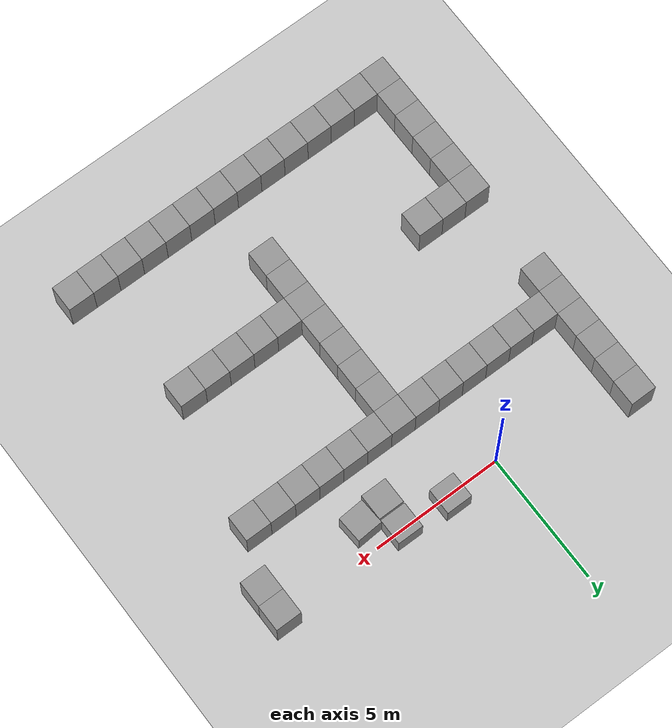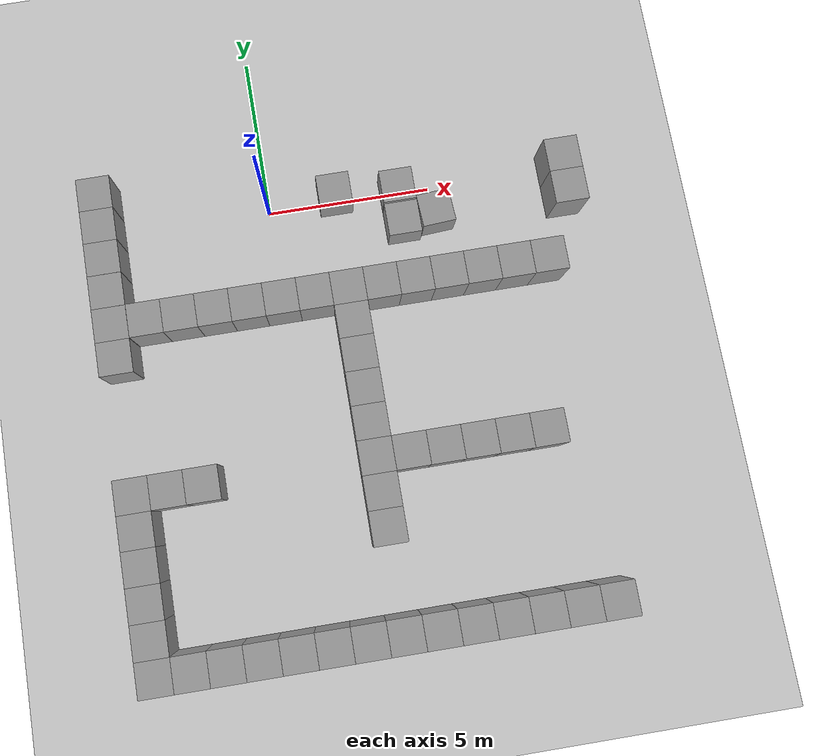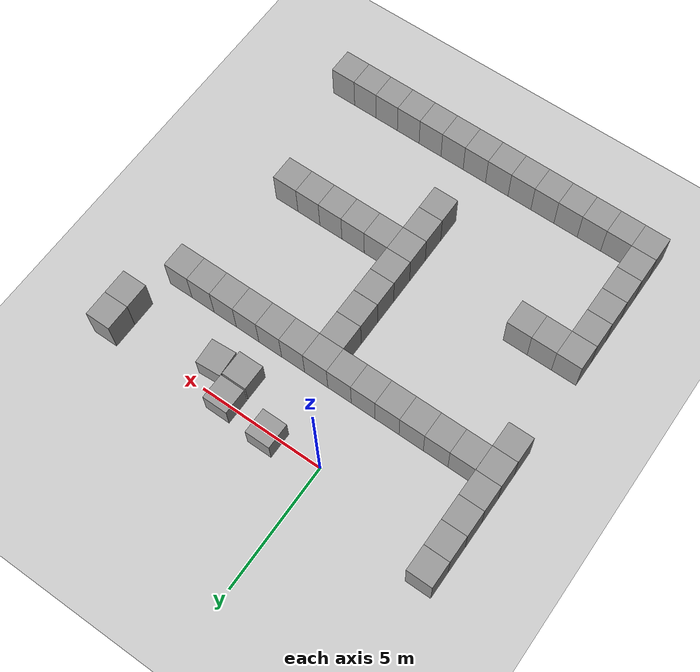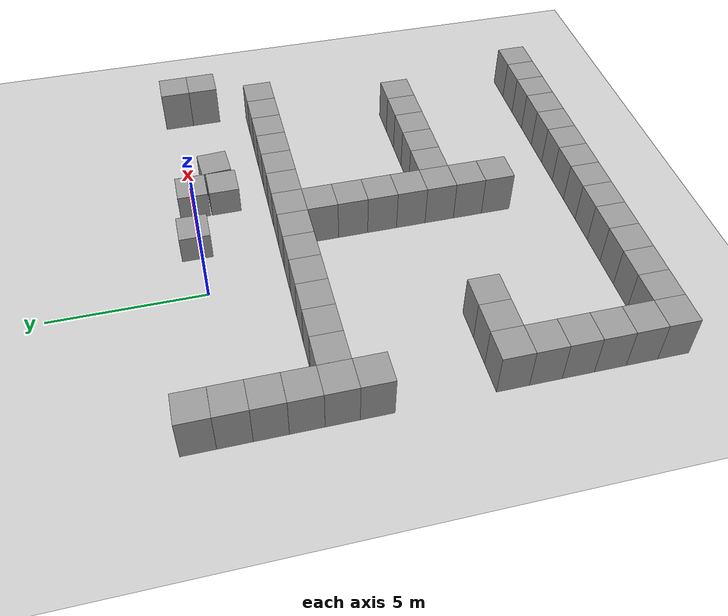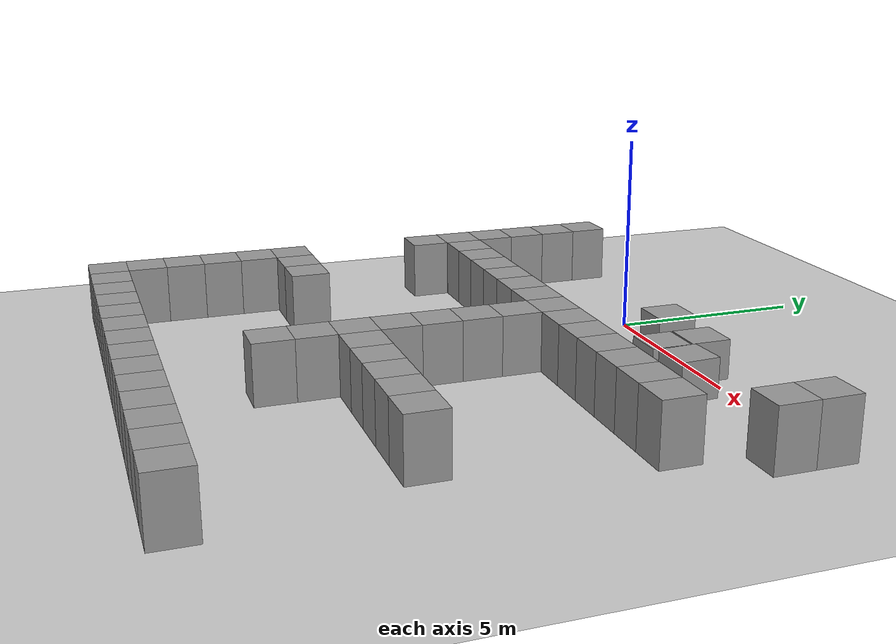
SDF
<sdf version="1.4">
 <world name="default">
  <model name="ground_plane">
   <static>1</static>
   <link name="link">
    <collision name="collision">
     <geometry><plane><normal>0 0 1</normal><size>100 100</size></plane></geometry>
     <surface><friction><ode><mu>100</mu><mu2>50</mu2></ode></friction></surface>
    </collision>
    <visual name="visual">
     <cast_shadows>0</cast_shadows>
     <geometry><plane><normal>0 0 1</normal><size>100 100</size></plane></geometry>
     <material>
      <script><uri>file://media/materials/scripts/gazebo.material</uri><name>Gazebo/Grey</name></script>
     </material>
    </visual>
    <velocity_decay><linear>0</linear><angular>0</angular></velocity_decay>
   </link>
  </model>
  <model name="unit_box_15">
   <pose>-0.999934 -2.99993 0.5 0 0 -3.9e-05</pose>
   <static>1</static>
   <link name="link">
    <inertial>
     <mass>1</mass>
     <inertia><ixx>1</ixx><ixy>0</ixy><ixz>0</ixz><iyy>1</iyy><iyz>0</iyz><izz>1</izz></inertia>
    </inertial>
    <collision name="collision"><geometry><box><size>1 1 2</size></box></geometry></collision>
    <visual name="visual">
     <geometry><box><size>1 1 2</size></box></geometry>
     <material>
      <script><uri>file://media/materials/scripts/gazebo.material</uri><name>Gazebo/Grey</name></script>
     </material>
    </visual>
    <velocity_decay><linear>0</linear><angular>0</angular></velocity_decay>
   </link>
   <static>0</static>
  </model>
  <model name="unit_box_16">
   <pose>6.7e-05 -2.99994 0.5 0 0 -3.6e-05</pose>
   <static>1</static>
   <link name="link">
    <inertial>
     <mass>1</mass>
     <inertia><ixx>1</ixx><ixy>0</ixy><ixz>0</ixz><iyy>1</iyy><iyz>0</iyz><izz>1</izz></inertia>
    </inertial>
    <collision name="collision"><geometry><box><size>1 1 2</size></box></geometry></collision>
    <visual name="visual">
     <geometry><box><size>1 1 2</size></box></geometry>
     <material>
      <script><uri>file://media/materials/scripts/gazebo.material</uri><name>Gazebo/Grey</name></script>
     </material>
    </visual>
    <velocity_decay><linear>0</linear><angular>0</angular></velocity_decay>
   </link>
   <static>0</static>
  </model>
  <model name="unit_box_17">
   <pose>1.00008 -2.99994 0.5 0 0 -1.9e-05</pose>
   <static>1</static>
   <link name="link">
    <inertial>
     <mass>1</mass>
     <inertia><ixx>1</ixx><ixy>0</ixy><ixz>0</ixz><iyy>1</iyy><iyz>0</iyz><izz>1</izz></inertia>
    </inertial>
    <collision name="collision"><geometry><box><size>1 1 2</size></box></geometry></collision>
    <visual name="visual">
     <geometry><box><size>1 1 2</size></box></geometry>
     <material>
      <script><uri>file://media/materials/scripts/gazebo.material</uri><name>Gazebo/Grey</name></script>
     </material>
    </visual>
    <velocity_decay><linear>0</linear><angular>0</angular></velocity_decay>
   </link>
   <static>0</static>
  </model>
  <model name="unit_box_18">
   <pose>2.00008 -2.99995 0.5 0 0 -1.5e-05</pose>
   <static>1</static>
   <link name="link">
    <inertial>
     <mass>1</mass>
     <inertia><ixx>1</ixx><ixy>0</ixy><ixz>0</ixz><iyy>1</iyy><iyz>0</iyz><izz>1</izz></inertia>
    </inertial>
    <collision name="collision"><geometry><box><size>1 1 2</size></box></geometry></collision>
    <visual name="visual">
     <geometry><box><size>1 1 2</size></box></geometry>
     <material>
      <script><uri>file://media/materials/scripts/gazebo.material</uri><name>Gazebo/Grey</name></script>
     </material>
    </visual>
    <velocity_decay><linear>0</linear><angular>0</angular></velocity_decay>
   </link>
   <static>0</static>
  </model>
  <model name="unit_box_19">
   <pose>3.00008 -2.9999 0.5 0 0 -1e-05</pose>
   <static>1</static>
   <link name="link">
    <inertial>
     <mass>1</mass>
     <inertia><ixx>1</ixx><ixy>0</ixy><ixz>0</ixz><iyy>1</iyy><iyz>0</iyz><izz>1</izz></inertia>
    </inertial>
    <collision name="collision"><geometry><box><size>1 1 2</size></box></geometry></collision>
    <visual name="visual">
     <geometry><box><size>1 1 2</size></box></geometry>
     <material>
      <script><uri>file://media/materials/scripts/gazebo.material</uri><name>Gazebo/Grey</name></script>
     </material>
    </visual>
    <velocity_decay><linear>0</linear><angular>0</angular></velocity_decay>
   </link>
   <static>0</static>
  </model>
  <model name="unit_box_20">
   <pose>4.00008 -2.99993 0.5 0 0 -1e-05</pose>
   <static>1</static>
   <link name="link">
    <inertial>
     <mass>1</mass>
     <inertia><ixx>1</ixx><ixy>0</ixy><ixz>0</ixz><iyy>1</iyy><iyz>0</iyz><izz>1</izz></inertia>
    </inertial>
    <collision name="collision"><geometry><box><size>1 1 2</size></box></geometry></collision>
    <visual name="visual">
     <geometry><box><size>1 1 2</size></box></geometry>
     <material>
      <script><uri>file://media/materials/scripts/gazebo.material</uri><name>Gazebo/Grey</name></script>
     </material>
    </visual>
    <velocity_decay><linear>0</linear><angular>0</angular></velocity_decay>
   </link>
   <static>0</static>
  </model>
  <model name="unit_box_21">
   <pose>5.00008 -2.99993 0.5 0 0 -1.2e-05</pose>
   <static>1</static>
   <link name="link">
    <inertial>
     <mass>1</mass>
     <inertia><ixx>1</ixx><ixy>0</ixy><ixz>0</ixz><iyy>1</iyy><iyz>0</iyz><izz>1</izz></inertia>
    </inertial>
    <collision name="collision"><geometry><box><size>1 1 2</size></box></geometry></collision>
    <visual name="visual">
     <geometry><box><size>1 1 2</size></box></geometry>
     <material>
      <script><uri>file://media/materials/scripts/gazebo.material</uri><name>Gazebo/Grey</name></script>
     </material>
    </visual>
    <velocity_decay><linear>0</linear><angular>0</angular></velocity_decay>
   </link>
   <static>0</static>
  </model>
  <model name="unit_box_22">
   <pose>6.00009 -2.99997 0.5 0 0 -1.2e-05</pose>
   <static>1</static>
   <link name="link">
    <inertial>
     <mass>1</mass>
     <inertia><ixx>1</ixx><ixy>0</ixy><ixz>0</ixz><iyy>1</iyy><iyz>0</iyz><izz>1</izz></inertia>
    </inertial>
    <collision name="collision"><geometry><box><size>1 1 2</size></box></geometry></collision>
    <visual name="visual">
     <geometry><box><size>1 1 2</size></box></geometry>
     <material>
      <script><uri>file://media/materials/scripts/gazebo.material</uri><name>Gazebo/Grey</name></script>
     </material>
    </visual>
    <velocity_decay><linear>0</linear><angular>0</angular></velocity_decay>
   </link>
   <static>0</static>
  </model>
  <model name="unit_box_23">
   <pose>7.00009 -2.99996 0.5 0 0 -1e-05</pose>
   <static>1</static>
   <link name="link">
    <inertial>
     <mass>1</mass>
     <inertia><ixx>1</ixx><ixy>0</ixy><ixz>0</ixz><iyy>1</iyy><iyz>0</iyz><izz>1</izz></inertia>
    </inertial>
    <collision name="collision"><geometry><box><size>1 1 2</size></box></geometry></collision>
    <visual name="visual">
     <geometry><box><size>1 1 2</size></box></geometry>
     <material>
      <script><uri>file://media/materials/scripts/gazebo.material</uri><name>Gazebo/Grey</name></script>
     </material>
    </visual>
    <velocity_decay><linear>0</linear><angular>0</angular></velocity_decay>
   </link>
   <static>0</static>
  </model>
  <model name="unit_box_24">
   <pose>8.00009 -3 0.5 0 0 -1.4e-05</pose>
   <static>1</static>
   <link name="link">
    <inertial>
     <mass>1</mass>
     <inertia><ixx>1</ixx><ixy>0</ixy><ixz>0</ixz><iyy>1</iyy><iyz>0</iyz><izz>1</izz></inertia>
    </inertial>
    <collision name="collision"><geometry><box><size>1 1 2</size></box></geometry></collision>
    <visual name="visual">
     <geometry><box><size>1 1 2</size></box></geometry>
     <material>
      <script><uri>file://media/materials/scripts/gazebo.material</uri><name>Gazebo/Grey</name></script>
     </material>
    </visual>
    <velocity_decay><linear>0</linear><angular>0</angular></velocity_decay>
   </link>
   <static>0</static>
  </model>
  <model name="unit_box_27">
   <pose>8.99997 -1.00001 0.5 0 0 -1e-05</pose>
   <static>1</static>
   <link name="link">
    <inertial>
     <mass>1</mass>
     <inertia><ixx>1</ixx><ixy>0</ixy><ixz>0</ixz><iyy>1</iyy><iyz>0</iyz><izz>1</izz></inertia>
    </inertial>
    <collision name="collision"><geometry><box><size>1 1 2</size></box></geometry></collision>
    <visual name="visual">
     <geometry><box><size>1 1 2</size></box></geometry>
     <material>
      <script><uri>file://media/materials/scripts/gazebo.material</uri><name>Gazebo/Grey</name></script>
     </material>
    </visual>
    <velocity_decay><linear>0</linear><angular>0</angular></velocity_decay>
   </link>
   <static>0</static>
  </model>
  <model name="unit_box_28">
   <pose>8.99994 -8e-06 0.5 0 0 -1.1e-05</pose>
   <static>1</static>
   <link name="link">
    <inertial>
     <mass>1</mass>
     <inertia><ixx>1</ixx><ixy>0</ixy><ixz>0</ixz><iyy>1</iyy><iyz>0</iyz><izz>1</izz></inertia>
    </inertial>
    <collision name="collision"><geometry><box><size>1 1 2</size></box></geometry></collision>
    <visual name="visual">
     <geometry><box><size>1 1 2</size></box></geometry>
     <material>
      <script><uri>file://media/materials/scripts/gazebo.material</uri><name>Gazebo/Grey</name></script>
     </material>
    </visual>
    <velocity_decay><linear>0</linear><angular>0</angular></velocity_decay>
   </link>
   <static>0</static>
  </model>
  <model name="unit_box_43">
   <pose>-5.00197 0.99143 0.5 0 -0 0.001375</pose>
   <static>1</static>
   <link name="link">
    <inertial>
     <mass>1</mass>
     <inertia><ixx>1</ixx><ixy>0</ixy><ixz>0</ixz><iyy>1</iyy><iyz>0</iyz><izz>1</izz></inertia>
    </inertial>
    <collision name="collision"><geometry><box><size>1 1 2</size></box></geometry></collision>
    <visual name="visual">
     <geometry><box><size>1 1 2</size></box></geometry>
     <material>
      <script><uri>file://media/materials/scripts/gazebo.material</uri><name>Gazebo/Grey</name></script>
     </material>
    </visual>
    <velocity_decay><linear>0</linear><angular>0</angular></velocity_decay>
   </link>
   <static>0</static>
  </model>
  <model name="unit_box_44">
   <pose>-5.00065 -0.008792 0.5 0 -0 0.000932</pose>
   <static>1</static>
   <link name="link">
    <inertial>
     <mass>1</mass>
     <inertia><ixx>1</ixx><ixy>0</ixy><ixz>0</ixz><iyy>1</iyy><iyz>0</iyz><izz>1</izz></inertia>
    </inertial>
    <collision name="collision"><geometry><box><size>1 1 2</size></box></geometry></collision>
    <visual name="visual">
     <geometry><box><size>1 1 2</size></box></geometry>
     <material>
      <script><uri>file://media/materials/scripts/gazebo.material</uri><name>Gazebo/Grey</name></script>
     </material>
    </visual>
    <velocity_decay><linear>0</linear><angular>0</angular></velocity_decay>
   </link>
   <static>0</static>
  </model>
  <model name="unit_box_45">
   <pose>-5.00074 -1.00881 0.5 0 -0 0.000893</pose>
   <static>1</static>
   <link name="link">
    <inertial>
     <mass>1</mass>
     <inertia><ixx>1</ixx><ixy>0</ixy><ixz>0</ixz><iyy>1</iyy><iyz>0</iyz><izz>1</izz></inertia>
    </inertial>
    <collision name="collision"><geometry><box><size>1 1 2</size></box></geometry></collision>
    <visual name="visual">
     <geometry><box><size>1 1 2</size></box></geometry>
     <material>
      <script><uri>file://media/materials/scripts/gazebo.material</uri><name>Gazebo/Grey</name></script>
     </material>
    </visual>
    <velocity_decay><linear>0</linear><angular>0</angular></velocity_decay>
   </link>
   <static>0</static>
  </model>
  <model name="unit_box_46">
   <pose>-5.00037 -2.00886 0.5 0 -0 0.000802</pose>
   <static>1</static>
   <link name="link">
    <inertial>
     <mass>1</mass>
     <inertia><ixx>1</ixx><ixy>0</ixy><ixz>0</ixz><iyy>1</iyy><iyz>0</iyz><izz>1</izz></inertia>
    </inertial>
    <collision name="collision"><geometry><box><size>1 1 2</size></box></geometry></collision>
    <visual name="visual">
     <geometry><box><size>1 1 2</size></box></geometry>
     <material>
      <script><uri>file://media/materials/scripts/gazebo.material</uri><name>Gazebo/Grey</name></script>
     </material>
    </visual>
    <velocity_decay><linear>0</linear><angular>0</angular></velocity_decay>
   </link>
   <static>0</static>
  </model>
  <model name="unit_box_47">
   <pose>-5.00047 -3.0089 0.5 0 -0 0.000729</pose>
   <static>1</static>
   <link name="link">
    <inertial>
     <mass>1</mass>
     <inertia><ixx>1</ixx><ixy>0</ixy><ixz>0</ixz><iyy>1</iyy><iyz>0</iyz><izz>1</izz></inertia>
    </inertial>
    <collision name="collision"><geometry><box><size>1 1 2</size></box></geometry></collision>
    <visual name="visual">
     <geometry><box><size>1 1 2</size></box></geometry>
     <material>
      <script><uri>file://media/materials/scripts/gazebo.material</uri><name>Gazebo/Grey</name></script>
     </material>
    </visual>
    <velocity_decay><linear>0</linear><angular>0</angular></velocity_decay>
   </link>
   <static>0</static>
  </model>
  <model name="unit_box_48">
   <pose>-3.99998 -3.00036 0.5 0 0 -0.000119</pose>
   <static>1</static>
   <link name="link">
    <inertial>
     <mass>1</mass>
     <inertia><ixx>1</ixx><ixy>0</ixy><ixz>0</ixz><iyy>1</iyy><iyz>0</iyz><izz>1</izz></inertia>
    </inertial>
    <collision name="collision"><geometry><box><size>1 1 2</size></box></geometry></collision>
    <visual name="visual">
     <geometry><box><size>1 1 2</size></box></geometry>
     <material>
      <script><uri>file://media/materials/scripts/gazebo.material</uri><name>Gazebo/Grey</name></script>
     </material>
    </visual>
    <velocity_decay><linear>0</linear><angular>0</angular></velocity_decay>
   </link>
   <static>0</static>
  </model>
  <model name="unit_box_49">
   <pose>-2.99995 -3.00005 0.5 0 0 -7.3e-05</pose>
   <static>1</static>
   <link name="link">
    <inertial>
     <mass>1</mass>
     <inertia><ixx>1</ixx><ixy>0</ixy><ixz>0</ixz><iyy>1</iyy><iyz>0</iyz><izz>1</izz></inertia>
    </inertial>
    <collision name="collision"><geometry><box><size>1 1 2</size></box></geometry></collision>
    <visual name="visual">
     <geometry><box><size>1 1 2</size></box></geometry>
     <material>
      <script><uri>file://media/materials/scripts/gazebo.material</uri><name>Gazebo/Grey</name></script>
     </material>
    </visual>
    <velocity_decay><linear>0</linear><angular>0</angular></velocity_decay>
   </link>
   <static>0</static>
  </model>
  <model name="unit_box_50">
   <pose>-1.99995 -3.00002 0.5 0 0 -7.1e-05</pose>
   <static>1</static>
   <link name="link">
    <inertial>
     <mass>1</mass>
     <inertia><ixx>1</ixx><ixy>0</ixy><ixz>0</ixz><iyy>1</iyy><iyz>0</iyz><izz>1</izz></inertia>
    </inertial>
    <collision name="collision"><geometry><box><size>1 1 2</size></box></geometry></collision>
    <visual name="visual">
     <geometry><box><size>1 1 2</size></box></geometry>
     <material>
      <script><uri>file://media/materials/scripts/gazebo.material</uri><name>Gazebo/Grey</name></script>
     </material>
    </visual>
    <velocity_decay><linear>0</linear><angular>0</angular></velocity_decay>
   </link>
   <static>0</static>
  </model>
  <model name="unit_box_224">
   <pose>1.99999 -3.99999 0.5 0 0 -4e-06</pose>
   <static>1</static>
   <link name="link">
    <inertial>
     <mass>1</mass>
     <inertia><ixx>1</ixx><ixy>0</ixy><ixz>0</ixz><iyy>1</iyy><iyz>0</iyz><izz>1</izz></inertia>
    </inertial>
    <collision name="collision"><geometry><box><size>1 1 2</size></box></geometry></collision>
    <visual name="visual">
     <geometry><box><size>1 1 2</size></box></geometry>
     <material>
      <script><uri>file://media/materials/scripts/gazebo.material</uri><name>Gazebo/Grey</name></script>
     </material>
    </visual>
    <velocity_decay><linear>0</linear><angular>0</angular></velocity_decay>
   </link>
   <static>0</static>
  </model>
  <model name="unit_box_225">
   <pose>2 -4.99999 0.5 0 0 -4e-06</pose>
   <static>1</static>
   <link name="link">
    <inertial>
     <mass>1</mass>
     <inertia><ixx>1</ixx><ixy>0</ixy><ixz>0</ixz><iyy>1</iyy><iyz>0</iyz><izz>1</izz></inertia>
    </inertial>
    <collision name="collision"><geometry><box><size>1 1 2</size></box></geometry></collision>
    <visual name="visual">
     <geometry><box><size>1 1 2</size></box></geometry>
     <material>
      <script><uri>file://media/materials/scripts/gazebo.material</uri><name>Gazebo/Grey</name></script>
     </material>
    </visual>
    <velocity_decay><linear>0</linear><angular>0</angular></velocity_decay>
   </link>
   <static>0</static>
  </model>
  <model name="unit_box_226">
   <pose>2.00001 -6 0.5 0 0 -3e-06</pose>
   <static>1</static>
   <link name="link">
    <inertial>
     <mass>1</mass>
     <inertia><ixx>1</ixx><ixy>0</ixy><ixz>0</ixz><iyy>1</iyy><iyz>0</iyz><izz>1</izz></inertia>
    </inertial>
    <collision name="collision"><geometry><box><size>1 1 2</size></box></geometry></collision>
    <visual name="visual">
     <geometry><box><size>1 1 2</size></box></geometry>
     <material>
      <script><uri>file://media/materials/scripts/gazebo.material</uri><name>Gazebo/Grey</name></script>
     </material>
    </visual>
    <velocity_decay><linear>0</linear><angular>0</angular></velocity_decay>
   </link>
   <static>0</static>
  </model>
  <model name="unit_box_227">
   <pose>2 -7 0.5 0 0 -4e-06</pose>
   <static>1</static>
   <link name="link">
    <inertial>
     <mass>1</mass>
     <inertia><ixx>1</ixx><ixy>0</ixy><ixz>0</ixz><iyy>1</iyy><iyz>0</iyz><izz>1</izz></inertia>
    </inertial>
    <collision name="collision"><geometry><box><size>1 1 2</size></box></geometry></collision>
    <visual name="visual">
     <geometry><box><size>1 1 2</size></box></geometry>
     <material>
      <script><uri>file://media/materials/scripts/gazebo.material</uri><name>Gazebo/Grey</name></script>
     </material>
    </visual>
    <velocity_decay><linear>0</linear><angular>0</angular></velocity_decay>
   </link>
   <static>0</static>
  </model>
  <model name="unit_box_228">
   <pose>2 -8 0.5 0 0 -4e-06</pose>
   <static>1</static>
   <link name="link">
    <inertial>
     <mass>1</mass>
     <inertia><ixx>1</ixx><ixy>0</ixy><ixz>0</ixz><iyy>1</iyy><iyz>0</iyz><izz>1</izz></inertia>
    </inertial>
    <collision name="collision"><geometry><box><size>1 1 2</size></box></geometry></collision>
    <visual name="visual">
     <geometry><box><size>1 1 2</size></box></geometry>
     <material>
      <script><uri>file://media/materials/scripts/gazebo.material</uri><name>Gazebo/Grey</name></script>
     </material>
    </visual>
    <velocity_decay><linear>0</linear><angular>0</angular></velocity_decay>
   </link>
   <static>0</static>
  </model>
  <model name="unit_box_229">
   <pose>2 -9 0.5 0 0 -3e-06</pose>
   <static>1</static>
   <link name="link">
    <inertial>
     <mass>1</mass>
     <inertia><ixx>1</ixx><ixy>0</ixy><ixz>0</ixz><iyy>1</iyy><iyz>0</iyz><izz>1</izz></inertia>
    </inertial>
    <collision name="collision"><geometry><box><size>1 1 2</size></box></geometry></collision>
    <visual name="visual">
     <geometry><box><size>1 1 2</size></box></geometry>
     <material>
      <script><uri>file://media/materials/scripts/gazebo.material</uri><name>Gazebo/Grey</name></script>
     </material>
    </visual>
    <velocity_decay><linear>0</linear><angular>0</angular></velocity_decay>
   </link>
   <static>0</static>
  </model>
  <model name="unit_box_230">
   <pose>3 -8 0.5 0 0 -4e-06</pose>
   <static>1</static>
   <link name="link">
    <inertial>
     <mass>1</mass>
     <inertia><ixx>1</ixx><ixy>0</ixy><ixz>0</ixz><iyy>1</iyy><iyz>0</iyz><izz>1</izz></inertia>
    </inertial>
    <collision name="collision"><geometry><box><size>1 1 2</size></box></geometry></collision>
    <visual name="visual">
     <geometry><box><size>1 1 2</size></box></geometry>
     <material>
      <script><uri>file://media/materials/scripts/gazebo.material</uri><name>Gazebo/Grey</name></script>
     </material>
    </visual>
    <velocity_decay><linear>0</linear><angular>0</angular></velocity_decay>
   </link>
   <static>0</static>
  </model>
  <model name="unit_box_231">
   <pose>4 -8 0.5 0 0 -5e-06</pose>
   <static>1</static>
   <link name="link">
    <inertial>
     <mass>1</mass>
     <inertia><ixx>1</ixx><ixy>0</ixy><ixz>0</ixz><iyy>1</iyy><iyz>0</iyz><izz>1</izz></inertia>
    </inertial>
    <collision name="collision"><geometry><box><size>1 1 2</size></box></geometry></collision>
    <visual name="visual">
     <geometry><box><size>1 1 2</size></box></geometry>
     <material>
      <script><uri>file://media/materials/scripts/gazebo.material</uri><name>Gazebo/Grey</name></script>
     </material>
    </visual>
    <velocity_decay><linear>0</linear><angular>0</angular></velocity_decay>
   </link>
   <static>0</static>
  </model>
  <model name="unit_box_232">
   <pose>5 -7.99999 0.5 0 0 -5e-06</pose>
   <static>1</static>
   <link name="link">
    <inertial>
     <mass>1</mass>
     <inertia><ixx>1</ixx><ixy>0</ixy><ixz>0</ixz><iyy>1</iyy><iyz>0</iyz><izz>1</izz></inertia>
    </inertial>
    <collision name="collision"><geometry><box><size>1 1 2</size></box></geometry></collision>
    <visual name="visual">
     <geometry><box><size>1 1 2</size></box></geometry>
     <material>
      <script><uri>file://media/materials/scripts/gazebo.material</uri><name>Gazebo/Grey</name></script>
     </material>
    </visual>
    <velocity_decay><linear>0</linear><angular>0</angular></velocity_decay>
   </link>
   <static>0</static>
  </model>
  <model name="unit_box_233">
   <pose>6 -8 0.5 0 0 -5e-06</pose>
   <static>1</static>
   <link name="link">
    <inertial>
     <mass>1</mass>
     <inertia><ixx>1</ixx><ixy>0</ixy><ixz>0</ixz><iyy>1</iyy><iyz>0</iyz><izz>1</izz></inertia>
    </inertial>
    <collision name="collision"><geometry><box><size>1 1 2</size></box></geometry></collision>
    <visual name="visual">
     <geometry><box><size>1 1 2</size></box></geometry>
     <material>
      <script><uri>file://media/materials/scripts/gazebo.material</uri><name>Gazebo/Grey</name></script>
     </material>
    </visual>
    <velocity_decay><linear>0</linear><angular>0</angular></velocity_decay>
   </link>
   <static>0</static>
  </model>
  <model name="unit_box_234">
   <pose>7 -7.99999 0.5 0 0 -5e-06</pose>
   <static>1</static>
   <link name="link">
    <inertial>
     <mass>1</mass>
     <inertia><ixx>1</ixx><ixy>0</ixy><ixz>0</ixz><iyy>1</iyy><iyz>0</iyz><izz>1</izz></inertia>
    </inertial>
    <collision name="collision"><geometry><box><size>1 1 2</size></box></geometry></collision>
    <visual name="visual">
     <geometry><box><size>1 1 2</size></box></geometry>
     <material>
      <script><uri>file://media/materials/scripts/gazebo.material</uri><name>Gazebo/Grey</name></script>
     </material>
    </visual>
    <velocity_decay><linear>0</linear><angular>0</angular></velocity_decay>
   </link>
   <static>0</static>
  </model>
  <model name="unit_box_240">
   <pose>2 -10 0.5 0 0 -3e-06</pose>
   <static>1</static>
   <link name="link">
    <inertial>
     <mass>1</mass>
     <inertia><ixx>1</ixx><ixy>0</ixy><ixz>0</ixz><iyy>1</iyy><iyz>0</iyz><izz>1</izz></inertia>
    </inertial>
    <collision name="collision"><geometry><box><size>1 1 2</size></box></geometry></collision>
    <visual name="visual">
     <geometry><box><size>1 1 2</size></box></geometry>
     <material>
      <script><uri>file://media/materials/scripts/gazebo.material</uri><name>Gazebo/Grey</name></script>
     </material>
    </visual>
    <velocity_decay><linear>0</linear><angular>0</angular></velocity_decay>
   </link>
   <static>0</static>
  </model>
  <model name="unit_box_241">
   <pose>-4.99974 -4.00895 0.5 0 -0 0.000637</pose>
   <static>1</static>
   <link name="link">
    <inertial>
     <mass>1</mass>
     <inertia><ixx>1</ixx><ixy>0</ixy><ixz>0</ixz><iyy>1</iyy><iyz>0</iyz><izz>1</izz></inertia>
    </inertial>
    <collision name="collision"><geometry><box><size>1 1 2</size></box></geometry></collision>
    <visual name="visual">
     <geometry><box><size>1 1 2</size></box></geometry>
     <material>
      <script><uri>file://media/materials/scripts/gazebo.material</uri><name>Gazebo/Grey</name></script>
     </material>
    </visual>
    <velocity_decay><linear>0</linear><angular>0</angular></velocity_decay>
   </link>
   <static>0</static>
  </model>
  <model name="unit_box_242">
   <pose>-5 -8 0.5 0 0 -2e-06</pose>
   <static>1</static>
   <link name="link">
    <inertial>
     <mass>1</mass>
     <inertia><ixx>1</ixx><ixy>0</ixy><ixz>0</ixz><iyy>1</iyy><iyz>0</iyz><izz>1</izz></inertia>
    </inertial>
    <collision name="collision"><geometry><box><size>1 1 2</size></box></geometry></collision>
    <visual name="visual">
     <geometry><box><size>1 1 2</size></box></geometry>
     <material>
      <script><uri>file://media/materials/scripts/gazebo.material</uri><name>Gazebo/Grey</name></script>
     </material>
    </visual>
    <velocity_decay><linear>0</linear><angular>0</angular></velocity_decay>
   </link>
   <static>0</static>
  </model>
  <model name="unit_box_243">
   <pose>-4 -8 0.5 0 0 -2e-06</pose>
   <static>1</static>
   <link name="link">
    <inertial>
     <mass>1</mass>
     <inertia><ixx>1</ixx><ixy>0</ixy><ixz>0</ixz><iyy>1</iyy><iyz>0</iyz><izz>1</izz></inertia>
    </inertial>
    <collision name="collision"><geometry><box><size>1 1 2</size></box></geometry></collision>
    <visual name="visual">
     <geometry><box><size>1 1 2</size></box></geometry>
     <material>
      <script><uri>file://media/materials/scripts/gazebo.material</uri><name>Gazebo/Grey</name></script>
     </material>
    </visual>
    <velocity_decay><linear>0</linear><angular>0</angular></velocity_decay>
   </link>
   <static>0</static>
  </model>
  <model name="unit_box_244">
   <pose>-3 -8 0.5 0 -0 4e-06</pose>
   <static>1</static>
   <link name="link">
    <inertial>
     <mass>1</mass>
     <inertia><ixx>1</ixx><ixy>0</ixy><ixz>0</ixz><iyy>1</iyy><iyz>0</iyz><izz>1</izz></inertia>
    </inertial>
    <collision name="collision"><geometry><box><size>1 1 2</size></box></geometry></collision>
    <visual name="visual">
     <geometry><box><size>1 1 2</size></box></geometry>
     <material>
      <script><uri>file://media/materials/scripts/gazebo.material</uri><name>Gazebo/Grey</name></script>
     </material>
    </visual>
    <velocity_decay><linear>0</linear><angular>0</angular></velocity_decay>
   </link>
   <static>0</static>
  </model>
  <model name="unit_box_245">
   <pose>-5 -9 0.5 0 0 -2e-06</pose>
   <static>1</static>
   <link name="link">
    <inertial>
     <mass>1</mass>
     <inertia><ixx>1</ixx><ixy>0</ixy><ixz>0</ixz><iyy>1</iyy><iyz>0</iyz><izz>1</izz></inertia>
    </inertial>
    <collision name="collision"><geometry><box><size>1 1 2</size></box></geometry></collision>
    <visual name="visual">
     <geometry><box><size>1 1 2</size></box></geometry>
     <material>
      <script><uri>file://media/materials/scripts/gazebo.material</uri><name>Gazebo/Grey</name></script>
     </material>
    </visual>
    <velocity_decay><linear>0</linear><angular>0</angular></velocity_decay>
   </link>
   <static>0</static>
  </model>
  <model name="unit_box_246">
   <pose>-5 -10 0.5 0 0 -3e-06</pose>
   <static>1</static>
   <link name="link">
    <inertial>
     <mass>1</mass>
     <inertia><ixx>1</ixx><ixy>0</ixy><ixz>0</ixz><iyy>1</iyy><iyz>0</iyz><izz>1</izz></inertia>
    </inertial>
    <collision name="collision"><geometry><box><size>1 1 2</size></box></geometry></collision>
    <visual name="visual">
     <geometry><box><size>1 1 2</size></box></geometry>
     <material>
      <script><uri>file://media/materials/scripts/gazebo.material</uri><name>Gazebo/Grey</name></script>
     </material>
    </visual>
    <velocity_decay><linear>0</linear><angular>0</angular></velocity_decay>
   </link>
   <static>0</static>
  </model>
  <model name="unit_box_247">
   <pose>-5.00002 -11 0.5 0 0 -1.4e-05</pose>
   <static>1</static>
   <link name="link">
    <inertial>
     <mass>1</mass>
     <inertia><ixx>1</ixx><ixy>0</ixy><ixz>0</ixz><iyy>1</iyy><iyz>0</iyz><izz>1</izz></inertia>
    </inertial>
    <collision name="collision"><geometry><box><size>1 1 2</size></box></geometry></collision>
    <visual name="visual">
     <geometry><box><size>1 1 2</size></box></geometry>
     <material>
      <script><uri>file://media/materials/scripts/gazebo.material</uri><name>Gazebo/Grey</name></script>
     </material>
    </visual>
    <velocity_decay><linear>0</linear><angular>0</angular></velocity_decay>
   </link>
   <static>0</static>
  </model>
  <model name="unit_box_248">
   <pose>-5.00001 -12 0.5 0 0 -1.6e-05</pose>
   <static>1</static>
   <link name="link">
    <inertial>
     <mass>1</mass>
     <inertia><ixx>1</ixx><ixy>0</ixy><ixz>0</ixz><iyy>1</iyy><iyz>0</iyz><izz>1</izz></inertia>
    </inertial>
    <collision name="collision"><geometry><box><size>1 1 2</size></box></geometry></collision>
    <visual name="visual">
     <geometry><box><size>1 1 2</size></box></geometry>
     <material>
      <script><uri>file://media/materials/scripts/gazebo.material</uri><name>Gazebo/Grey</name></script>
     </material>
    </visual>
    <velocity_decay><linear>0</linear><angular>0</angular></velocity_decay>
   </link>
   <static>0</static>
  </model>
  <model name="unit_box_249">
   <pose>-5.00002 -13 0.5 0 0 -1.3e-05</pose>
   <static>1</static>
   <link name="link">
    <inertial>
     <mass>1</mass>
     <inertia><ixx>1</ixx><ixy>0</ixy><ixz>0</ixz><iyy>1</iyy><iyz>0</iyz><izz>1</izz></inertia>
    </inertial>
    <collision name="collision"><geometry><box><size>1 1 2</size></box></geometry></collision>
    <visual name="visual">
     <geometry><box><size>1 1 2</size></box></geometry>
     <material>
      <script><uri>file://media/materials/scripts/gazebo.material</uri><name>Gazebo/Grey</name></script>
     </material>
    </visual>
    <velocity_decay><linear>0</linear><angular>0</angular></velocity_decay>
   </link>
   <static>0</static>
  </model>
  <model name="unit_box_251">
   <pose>-4.00002 -13 0.5 1.61559e-27 -1e-06 -1.2e-05</pose>
   <static>1</static>
   <link name="link">
    <inertial>
     <mass>1</mass>
     <inertia><ixx>1</ixx><ixy>0</ixy><ixz>0</ixz><iyy>1</iyy><iyz>0</iyz><izz>1</izz></inertia>
    </inertial>
    <collision name="collision"><geometry><box><size>1 1 2</size></box></geometry></collision>
    <visual name="visual">
     <geometry><box><size>1 1 2</size></box></geometry>
     <material>
      <script><uri>file://media/materials/scripts/gazebo.material</uri><name>Gazebo/Grey</name></script>
     </material>
    </visual>
    <velocity_decay><linear>0</linear><angular>0</angular></velocity_decay>
   </link>
   <static>0</static>
  </model>
  <model name="unit_box_252">
   <pose>-3.00002 -13 0.5 0 0 -1.1e-05</pose>
   <static>1</static>
   <link name="link">
    <inertial>
     <mass>1</mass>
     <inertia><ixx>1</ixx><ixy>0</ixy><ixz>0</ixz><iyy>1</iyy><iyz>0</iyz><izz>1</izz></inertia>
    </inertial>
    <collision name="collision"><geometry><box><size>1 1 2</size></box></geometry></collision>
    <visual name="visual">
     <geometry><box><size>1 1 2</size></box></geometry>
     <material>
      <script><uri>file://media/materials/scripts/gazebo.material</uri><name>Gazebo/Grey</name></script>
     </material>
    </visual>
    <velocity_decay><linear>0</linear><angular>0</angular></velocity_decay>
   </link>
   <static>0</static>
  </model>
  <model name="unit_box_253">
   <pose>-2.00001 -13 0.5 0 0 -1e-05</pose>
   <static>1</static>
   <link name="link">
    <inertial>
     <mass>1</mass>
     <inertia><ixx>1</ixx><ixy>0</ixy><ixz>0</ixz><iyy>1</iyy><iyz>0</iyz><izz>1</izz></inertia>
    </inertial>
    <collision name="collision"><geometry><box><size>1 1 2</size></box></geometry></collision>
    <visual name="visual">
     <geometry><box><size>1 1 2</size></box></geometry>
     <material>
      <script><uri>file://media/materials/scripts/gazebo.material</uri><name>Gazebo/Grey</name></script>
     </material>
    </visual>
    <velocity_decay><linear>0</linear><angular>0</angular></velocity_decay>
   </link>
   <static>0</static>
  </model>
  <model name="unit_box_254">
   <pose>-1.00001 -13 0.5 0 0 -1e-05</pose>
   <static>1</static>
   <link name="link">
    <inertial>
     <mass>1</mass>
     <inertia><ixx>1</ixx><ixy>0</ixy><ixz>0</ixz><iyy>1</iyy><iyz>0</iyz><izz>1</izz></inertia>
    </inertial>
    <collision name="collision"><geometry><box><size>1 1 2</size></box></geometry></collision>
    <visual name="visual">
     <geometry><box><size>1 1 2</size></box></geometry>
     <material>
      <script><uri>file://media/materials/scripts/gazebo.material</uri><name>Gazebo/Grey</name></script>
     </material>
    </visual>
    <velocity_decay><linear>0</linear><angular>0</angular></velocity_decay>
   </link>
   <static>0</static>
  </model>
  <model name="unit_box_255">
   <pose>-1.2e-05 -12.9999 0.5 0 0 -8e-06</pose>
   <static>1</static>
   <link name="link">
    <inertial>
     <mass>1</mass>
     <inertia><ixx>1</ixx><ixy>0</ixy><ixz>0</ixz><iyy>1</iyy><iyz>0</iyz><izz>1</izz></inertia>
    </inertial>
    <collision name="collision"><geometry><box><size>1 1 2</size></box></geometry></collision>
    <visual name="visual">
     <geometry><box><size>1 1 2</size></box></geometry>
     <material>
      <script><uri>file://media/materials/scripts/gazebo.material</uri><name>Gazebo/Grey</name></script>
     </material>
    </visual>
    <velocity_decay><linear>0</linear><angular>0</angular></velocity_decay>
   </link>
   <static>0</static>
  </model>
  <model name="unit_box_256">
   <pose>0.999991 -12.9999 0.5 0 0 -7e-06</pose>
   <static>1</static>
   <link name="link">
    <inertial>
     <mass>1</mass>
     <inertia><ixx>1</ixx><ixy>0</ixy><ixz>0</ixz><iyy>1</iyy><iyz>0</iyz><izz>1</izz></inertia>
    </inertial>
    <collision name="collision"><geometry><box><size>1 1 2</size></box></geometry></collision>
    <visual name="visual">
     <geometry><box><size>1 1 2</size></box></geometry>
     <material>
      <script><uri>file://media/materials/scripts/gazebo.material</uri><name>Gazebo/Grey</name></script>
     </material>
    </visual>
    <velocity_decay><linear>0</linear><angular>0</angular></velocity_decay>
   </link>
   <static>0</static>
  </model>
  <model name="unit_box_257">
   <pose>1.99999 -12.9999 0.5 0 0 -7e-06</pose>
   <static>1</static>
   <link name="link">
    <inertial>
     <mass>1</mass>
     <inertia><ixx>1</ixx><ixy>0</ixy><ixz>0</ixz><iyy>1</iyy><iyz>0</iyz><izz>1</izz></inertia>
    </inertial>
    <collision name="collision"><geometry><box><size>1 1 2</size></box></geometry></collision>
    <visual name="visual">
     <geometry><box><size>1 1 2</size></box></geometry>
     <material>
      <script><uri>file://media/materials/scripts/gazebo.material</uri><name>Gazebo/Grey</name></script>
     </material>
    </visual>
    <velocity_decay><linear>0</linear><angular>0</angular></velocity_decay>
   </link>
   <static>0</static>
  </model>
  <model name="unit_box_258">
   <pose>2.99999 -12.9999 0.5 0 0 -5e-06</pose>
   <static>1</static>
   <link name="link">
    <inertial>
     <mass>1</mass>
     <inertia><ixx>1</ixx><ixy>0</ixy><ixz>0</ixz><iyy>1</iyy><iyz>0</iyz><izz>1</izz></inertia>
    </inertial>
    <collision name="collision"><geometry><box><size>1 1 2</size></box></geometry></collision>
    <visual name="visual">
     <geometry><box><size>1 1 2</size></box></geometry>
     <material>
      <script><uri>file://media/materials/scripts/gazebo.material</uri><name>Gazebo/Grey</name></script>
     </material>
    </visual>
    <velocity_decay><linear>0</linear><angular>0</angular></velocity_decay>
   </link>
   <static>0</static>
  </model>
  <model name="unit_box_259">
   <pose>4 -13 0.5 0 0 -5e-06</pose>
   <static>1</static>
   <link name="link">
    <inertial>
     <mass>1</mass>
     <inertia><ixx>1</ixx><ixy>0</ixy><ixz>0</ixz><iyy>1</iyy><iyz>0</iyz><izz>1</izz></inertia>
    </inertial>
    <collision name="collision"><geometry><box><size>1 1 2</size></box></geometry></collision>
    <visual name="visual">
     <geometry><box><size>1 1 2</size></box></geometry>
     <material>
      <script><uri>file://media/materials/scripts/gazebo.material</uri><name>Gazebo/Grey</name></script>
     </material>
    </visual>
    <velocity_decay><linear>0</linear><angular>0</angular></velocity_decay>
   </link>
   <static>0</static>
  </model>
  <model name="unit_box_260">
   <pose>5 -12.9999 0.499989 -3e-06 -0 -7e-06</pose>
   <static>1</static>
   <link name="link">
    <inertial>
     <mass>1</mass>
     <inertia><ixx>1</ixx><ixy>0</ixy><ixz>0</ixz><iyy>1</iyy><iyz>0</iyz><izz>1</izz></inertia>
    </inertial>
    <collision name="collision"><geometry><box><size>1 1 2</size></box></geometry></collision>
    <visual name="visual">
     <geometry><box><size>1 1 2</size></box></geometry>
     <material>
      <script><uri>file://media/materials/scripts/gazebo.material</uri><name>Gazebo/Grey</name></script>
     </material>
    </visual>
    <velocity_decay><linear>0</linear><angular>0</angular></velocity_decay>
   </link>
   <static>0</static>
  </model>
  <model name="unit_box_261">
   <pose>6 -13 0.500001 2e-06 3.23117e-27 -7e-06</pose>
   <static>1</static>
   <link name="link">
    <inertial>
     <mass>1</mass>
     <inertia><ixx>1</ixx><ixy>0</ixy><ixz>0</ixz><iyy>1</iyy><iyz>0</iyz><izz>1</izz></inertia>
    </inertial>
    <collision name="collision"><geometry><box><size>1 1 2</size></box></geometry></collision>
    <visual name="visual">
     <geometry><box><size>1 1 2</size></box></geometry>
     <material>
      <script><uri>file://media/materials/scripts/gazebo.material</uri><name>Gazebo/Grey</name></script>
     </material>
    </visual>
    <velocity_decay><linear>0</linear><angular>0</angular></velocity_decay>
   </link>
   <static>0</static>
  </model>
  <model name="unit_box_262">
   <pose>7 -13 0.5 0 0 -1.1e-05</pose>
   <static>1</static>
   <link name="link">
    <inertial>
     <mass>1</mass>
     <inertia><ixx>1</ixx><ixy>0</ixy><ixz>0</ixz><iyy>1</iyy><iyz>0</iyz><izz>1</izz></inertia>
    </inertial>
    <collision name="collision"><geometry><box><size>1 1 2</size></box></geometry></collision>
    <visual name="visual">
     <geometry><box><size>1 1 2</size></box></geometry>
     <material>
      <script><uri>file://media/materials/scripts/gazebo.material</uri><name>Gazebo/Grey</name></script>
     </material>
    </visual>
    <velocity_decay><linear>0</linear><angular>0</angular></velocity_decay>
   </link>
   <static>0</static>
  </model>
  <model name="unit_box_263">
   <pose>8 -13 0.499998 3e-06 -0 -1.1e-05</pose>
   <static>1</static>
   <link name="link">
    <inertial>
     <mass>1</mass>
     <inertia><ixx>1</ixx><ixy>0</ixy><ixz>0</ixz><iyy>1</iyy><iyz>0</iyz><izz>1</izz></inertia>
    </inertial>
    <collision name="collision"><geometry><box><size>1 1 2</size></box></geometry></collision>
    <visual name="visual">
     <geometry><box><size>1 1 2</size></box></geometry>
     <material>
      <script><uri>file://media/materials/scripts/gazebo.material</uri><name>Gazebo/Grey</name></script>
     </material>
    </visual>
    <velocity_decay><linear>0</linear><angular>0</angular></velocity_decay>
   </link>
   <static>0</static>
  </model>
  <model name="unit_box_1_0">
   <pose>2.07692 0.15496 0.5 0 -0 0</pose>
   <link name="link">
    <inertial>
     <mass>1</mass>
     <inertia><ixx>1</ixx><ixy>0</ixy><ixz>0</ixz><iyy>1</iyy><iyz>0</iyz><izz>1</izz></inertia>
    </inertial>
    <collision name="collision"><geometry><box><size>1 1 1</size></box></geometry></collision>
    <visual name="visual">
     <geometry><box><size>1 1 1</size></box></geometry>
     <material>
      <script><uri>file://media/materials/scripts/gazebo.material</uri><name>Gazebo/Grey</name></script>
     </material>
    </visual>
    <velocity_decay><linear>0</linear><angular>0</angular></velocity_decay>
   </link>
   <static>0</static>
  </model>
  <model name="unit_box_2_0">
   <pose>3.99371 -0.004467 0.5 0 0 -0.00213</pose>
   <link name="link">
    <inertial>
     <mass>1</mass>
     <inertia><ixx>1</ixx><ixy>0</ixy><ixz>0</ixz><iyy>1</iyy><iyz>0</iyz><izz>1</izz></inertia>
    </inertial>
    <collision name="collision"><geometry><box><size>1 1 1</size></box></geometry></collision>
    <visual name="visual">
     <geometry><box><size>1 1 1</size></box></geometry>
     <material>
      <script><uri>file://media/materials/scripts/gazebo.material</uri><name>Gazebo/Grey</name></script>
     </material>
    </visual>
    <velocity_decay><linear>0</linear><angular>0</angular></velocity_decay>
   </link>
   <static>0</static>
  </model>
  <model name="unit_box_3_0">
   <pose>3.99628 -1.05282 0.5 0 -0 0.001599</pose>
   <link name="link">
    <inertial>
     <mass>1</mass>
     <inertia><ixx>1</ixx><ixy>0</ixy><ixz>0</ixz><iyy>1</iyy><iyz>0</iyz><izz>1</izz></inertia>
    </inertial>
    <collision name="collision"><geometry><box><size>1 1 1</size></box></geometry></collision>
    <visual name="visual">
     <geometry><box><size>1 1 1</size></box></geometry>
     <material>
      <script><uri>file://media/materials/scripts/gazebo.material</uri><name>Gazebo/Grey</name></script>
     </material>
    </visual>
    <velocity_decay><linear>0</linear><angular>0</angular></velocity_decay>
   </link>
   <static>0</static>
  </model>
  <model name="unit_box_4_0">
   <pose>5.02476 -0.904439 0.5 0 -0 0.063509</pose>
   <link name="link">
    <inertial>
     <mass>1</mass>
     <inertia><ixx>1</ixx><ixy>0</ixy><ixz>0</ixz><iyy>1</iyy><iyz>0</iyz><izz>1</izz></inertia>
    </inertial>
    <collision name="collision"><geometry><box><size>1 1 1</size></box></geometry></collision>
    <visual name="visual">
     <geometry><box><size>1 1 1</size></box></geometry>
     <material>
      <script><uri>file://media/materials/scripts/gazebo.material</uri><name>Gazebo/Grey</name></script>
     </material>
    </visual>
    <velocity_decay><linear>0</linear><angular>0</angular></velocity_decay>
   </link>
   <static>0</static>
  </model>
 </world>
</sdf>
